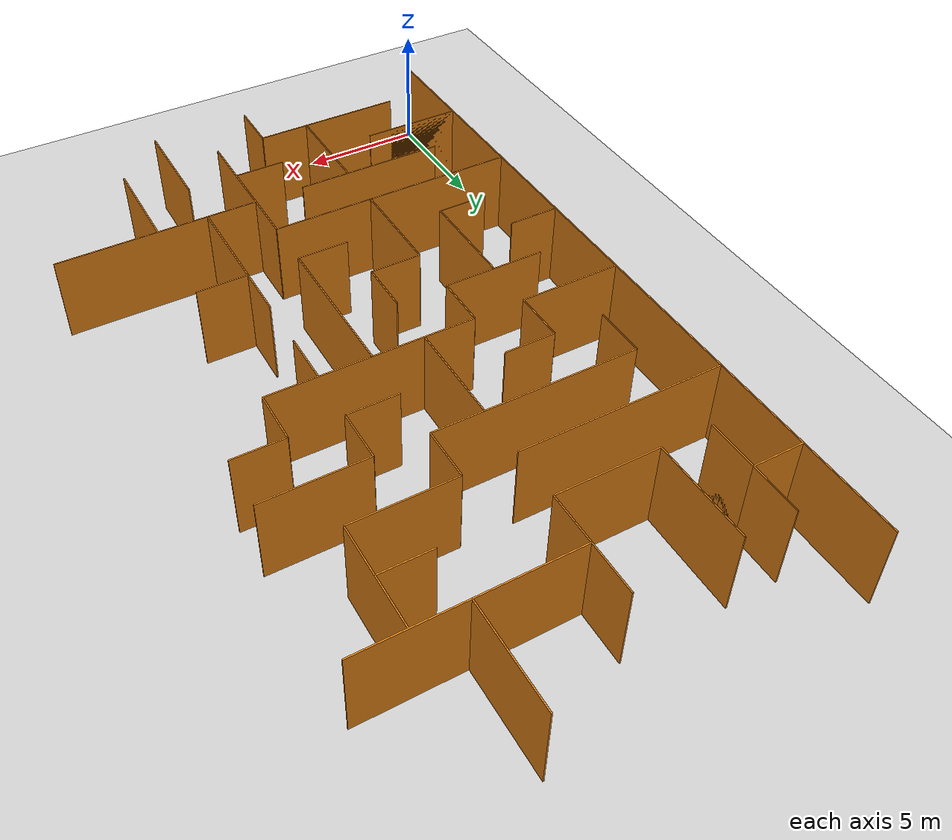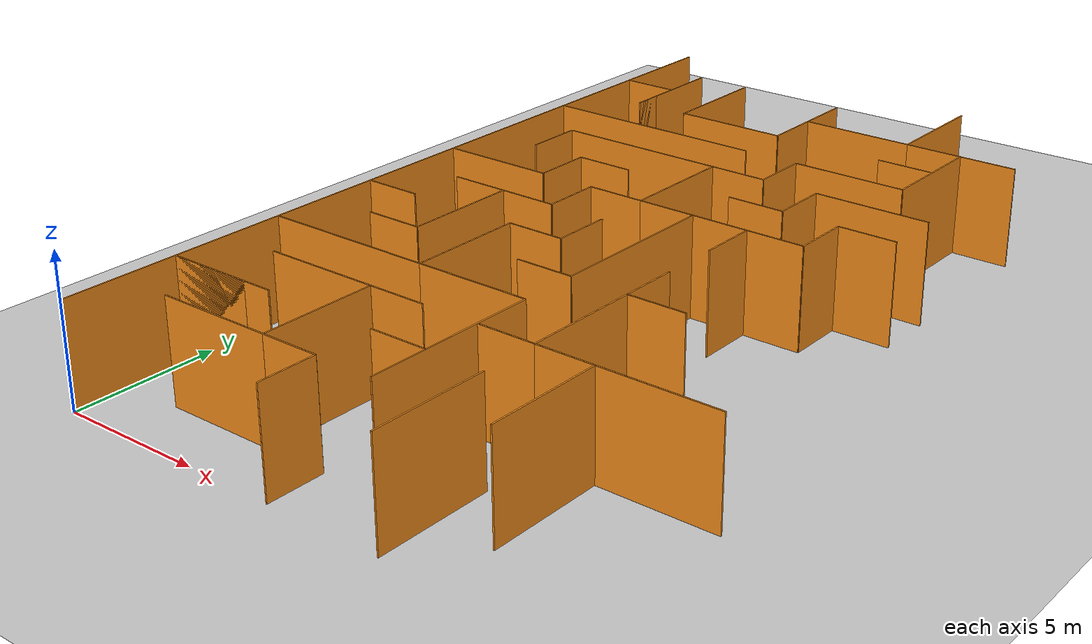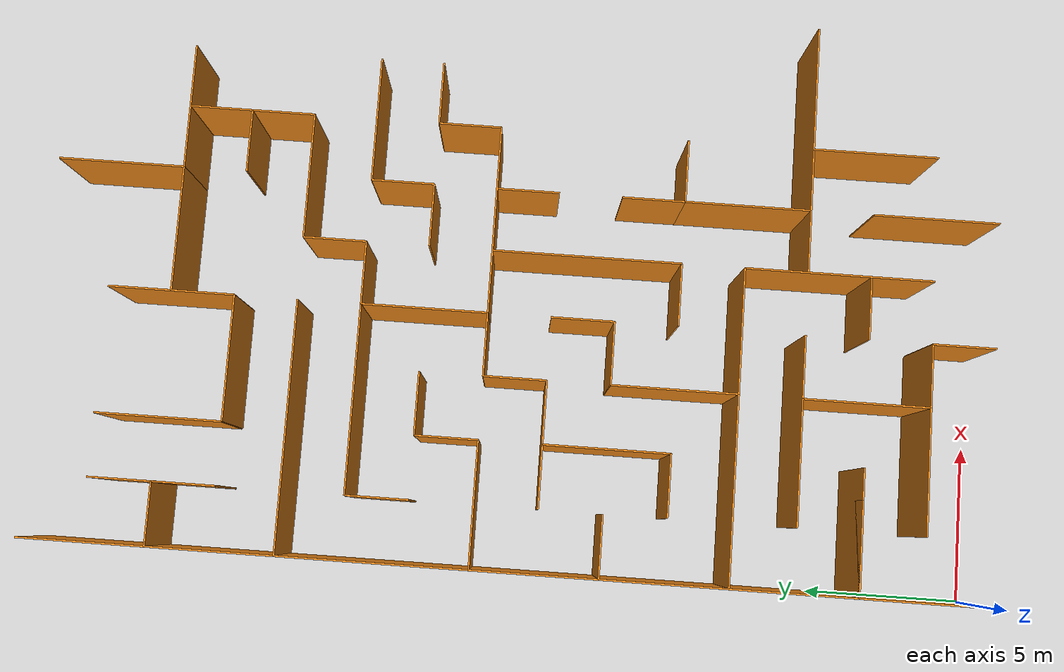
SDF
<sdf version="1.6">
 <world name="default">
  <model name="box_103">
   <pose>12.0 2.0 1.75 0 0 1.5707963267948966</pose>
   <link name="link">
    <inertial>
     <mass>1</mass>
     <inertia><ixx>0</ixx><ixy>0</ixy><ixz>0</ixz><iyy>0</iyy><iyz>0</iyz><izz>0</izz></inertia>
    </inertial>
    <collision name="collision"><geometry><box><size>4.0 0.05 3.5</size></box></geometry></collision>
    <visual name="visual">
     <geometry><box><size>4.0 0.05 3.5</size></box></geometry>
     <material>
      <script><name>Gazebo/Orange</name><uri>file://media/materials/scripts/gazebo.material</uri></script>
     </material>
    </visual>
   </link>
   <static>1</static>
  </model>
  <model name="box_102">
   <pose>2.0 4.0 1.75 0 0 -3.141592653589793</pose>
   <link name="link">
    <inertial>
     <mass>1</mass>
     <inertia><ixx>0</ixx><ixy>0</ixy><ixz>0</ixz><iyy>0</iyy><iyz>0</iyz><izz>0</izz></inertia>
    </inertial>
    <collision name="collision"><geometry><box><size>4.0 0.05 3.5</size></box></geometry></collision>
    <visual name="visual">
     <geometry><box><size>4.0 0.05 3.5</size></box></geometry>
     <material>
      <script><name>Gazebo/Orange</name><uri>file://media/materials/scripts/gazebo.material</uri></script>
     </material>
    </visual>
   </link>
   <static>1</static>
  </model>
  <model name="box_101">
   <pose>1.5 4.0 1.75 0 0 -0.0</pose>
   <link name="link">
    <inertial>
     <mass>1</mass>
     <inertia><ixx>0</ixx><ixy>0</ixy><ixz>0</ixz><iyy>0</iyy><iyz>0</iyz><izz>0</izz></inertia>
    </inertial>
    <collision name="collision"><geometry><box><size>3.0 0.05 3.5</size></box></geometry></collision>
    <visual name="visual">
     <geometry><box><size>3.0 0.05 3.5</size></box></geometry>
     <material>
      <script><name>Gazebo/Orange</name><uri>file://media/materials/scripts/gazebo.material</uri></script>
     </material>
    </visual>
   </link>
   <static>1</static>
  </model>
  <model name="box_100">
   <pose>4.0 2.0 1.75 0 0 -0.0</pose>
   <link name="link">
    <inertial>
     <mass>1</mass>
     <inertia><ixx>0</ixx><ixy>0</ixy><ixz>0</ixz><iyy>0</iyy><iyz>0</iyz><izz>0</izz></inertia>
    </inertial>
    <collision name="collision"><geometry><box><size>4.0 0.05 3.5</size></box></geometry></collision>
    <visual name="visual">
     <geometry><box><size>4.0 0.05 3.5</size></box></geometry>
     <material>
      <script><name>Gazebo/Orange</name><uri>file://media/materials/scripts/gazebo.material</uri></script>
     </material>
    </visual>
   </link>
   <static>1</static>
  </model>
  <model name="box_99">
   <pose>8.0 1.0 1.75 0 0 1.5707963267948966</pose>
   <link name="link">
    <inertial>
     <mass>1</mass>
     <inertia><ixx>0</ixx><ixy>0</ixy><ixz>0</ixz><iyy>0</iyy><iyz>0</iyz><izz>0</izz></inertia>
    </inertial>
    <collision name="collision"><geometry><box><size>2.0 0.05 3.5</size></box></geometry></collision>
    <visual name="visual">
     <geometry><box><size>2.0 0.05 3.5</size></box></geometry>
     <material>
      <script><name>Gazebo/Orange</name><uri>file://media/materials/scripts/gazebo.material</uri></script>
     </material>
    </visual>
   </link>
   <static>1</static>
  </model>
  <model name="box_98">
   <pose>7.0 2.0 1.75 0 0 -3.141592653589793</pose>
   <link name="link">
    <inertial>
     <mass>1</mass>
     <inertia><ixx>0</ixx><ixy>0</ixy><ixz>0</ixz><iyy>0</iyy><iyz>0</iyz><izz>0</izz></inertia>
    </inertial>
    <collision name="collision"><geometry><box><size>2.0 0.05 3.5</size></box></geometry></collision>
    <visual name="visual">
     <geometry><box><size>2.0 0.05 3.5</size></box></geometry>
     <material>
      <script><name>Gazebo/Orange</name><uri>file://media/materials/scripts/gazebo.material</uri></script>
     </material>
    </visual>
   </link>
   <static>1</static>
  </model>
  <model name="box_97">
   <pose>6.0 4.0 1.75 0 0 1.5707963267948966</pose>
   <link name="link">
    <inertial>
     <mass>1</mass>
     <inertia><ixx>0</ixx><ixy>0</ixy><ixz>0</ixz><iyy>0</iyy><iyz>0</iyz><izz>0</izz></inertia>
    </inertial>
    <collision name="collision"><geometry><box><size>4.0 0.05 3.5</size></box></geometry></collision>
    <visual name="visual">
     <geometry><box><size>4.0 0.05 3.5</size></box></geometry>
     <material>
      <script><name>Gazebo/Orange</name><uri>file://media/materials/scripts/gazebo.material</uri></script>
     </material>
    </visual>
   </link>
   <static>1</static>
  </model>
  <model name="box_96">
   <pose>5.0 6.0 1.75 0 0 -0.0</pose>
   <link name="link">
    <inertial>
     <mass>1</mass>
     <inertia><ixx>0</ixx><ixy>0</ixy><ixz>0</ixz><iyy>0</iyy><iyz>0</iyz><izz>0</izz></inertia>
    </inertial>
    <collision name="collision"><geometry><box><size>6.0 0.05 3.5</size></box></geometry></collision>
    <visual name="visual">
     <geometry><box><size>6.0 0.05 3.5</size></box></geometry>
     <material>
      <script><name>Gazebo/Orange</name><uri>file://media/materials/scripts/gazebo.material</uri></script>
     </material>
    </visual>
   </link>
   <static>1</static>
  </model>
  <model name="box_95">
   <pose>3.0 8.0 1.75 0 0 -0.0</pose>
   <link name="link">
    <inertial>
     <mass>1</mass>
     <inertia><ixx>0</ixx><ixy>0</ixy><ixz>0</ixz><iyy>0</iyy><iyz>0</iyz><izz>0</izz></inertia>
    </inertial>
    <collision name="collision"><geometry><box><size>6.0 0.05 3.5</size></box></geometry></collision>
    <visual name="visual">
     <geometry><box><size>6.0 0.05 3.5</size></box></geometry>
     <material>
      <script><name>Gazebo/Orange</name><uri>file://media/materials/scripts/gazebo.material</uri></script>
     </material>
    </visual>
   </link>
   <static>1</static>
  </model>
  <model name="box_93">
   <pose>11.0 6.0 1.75 0 0 -0.0</pose>
   <link name="link">
    <inertial>
     <mass>1</mass>
     <inertia><ixx>0</ixx><ixy>0</ixy><ixz>0</ixz><iyy>0</iyy><iyz>0</iyz><izz>0</izz></inertia>
    </inertial>
    <collision name="collision"><geometry><box><size>2.0 0.05 3.5</size></box></geometry></collision>
    <visual name="visual">
     <geometry><box><size>2.0 0.05 3.5</size></box></geometry>
     <material>
      <script><name>Gazebo/Orange</name><uri>file://media/materials/scripts/gazebo.material</uri></script>
     </material>
    </visual>
   </link>
   <static>1</static>
  </model>
  <model name="box_92">
   <pose>9.0 4.0 1.75 0 0 -0.0</pose>
   <link name="link">
    <inertial>
     <mass>1</mass>
     <inertia><ixx>0</ixx><ixy>0</ixy><ixz>0</ixz><iyy>0</iyy><iyz>0</iyz><izz>0</izz></inertia>
    </inertial>
    <collision name="collision"><geometry><box><size>2.0 0.05 3.5</size></box></geometry></collision>
    <visual name="visual">
     <geometry><box><size>2.0 0.05 3.5</size></box></geometry>
     <material>
      <script><name>Gazebo/Orange</name><uri>file://media/materials/scripts/gazebo.material</uri></script>
     </material>
    </visual>
   </link>
   <static>1</static>
  </model>
  <model name="box_91">
   <pose>10.0 5.0 1.75 0 0 1.5707963267948966</pose>
   <link name="link">
    <inertial>
     <mass>1</mass>
     <inertia><ixx>0</ixx><ixy>0</ixy><ixz>0</ixz><iyy>0</iyy><iyz>0</iyz><izz>0</izz></inertia>
    </inertial>
    <collision name="collision"><geometry><box><size>6.0 0.05 3.5</size></box></geometry></collision>
    <visual name="visual">
     <geometry><box><size>6.0 0.05 3.5</size></box></geometry>
     <material>
      <script><name>Gazebo/Orange</name><uri>file://media/materials/scripts/gazebo.material</uri></script>
     </material>
    </visual>
   </link>
   <static>1</static>
  </model>
  <model name="box_90">
   <pose>8.0 8.0 1.75 0 0 -3.141592653589793</pose>
   <link name="link">
    <inertial>
     <mass>1</mass>
     <inertia><ixx>0</ixx><ixy>0</ixy><ixz>0</ixz><iyy>0</iyy><iyz>0</iyz><izz>0</izz></inertia>
    </inertial>
    <collision name="collision"><geometry><box><size>4.0 0.05 3.5</size></box></geometry></collision>
    <visual name="visual">
     <geometry><box><size>4.0 0.05 3.5</size></box></geometry>
     <material>
      <script><name>Gazebo/Orange</name><uri>file://media/materials/scripts/gazebo.material</uri></script>
     </material>
    </visual>
   </link>
   <static>1</static>
  </model>
  <model name="box_89">
   <pose>6.0 10.0 1.75 0 0 1.5707963267948966</pose>
   <link name="link">
    <inertial>
     <mass>1</mass>
     <inertia><ixx>0</ixx><ixy>0</ixy><ixz>0</ixz><iyy>0</iyy><iyz>0</iyz><izz>0</izz></inertia>
    </inertial>
    <collision name="collision"><geometry><box><size>4.0 0.05 3.5</size></box></geometry></collision>
    <visual name="visual">
     <geometry><box><size>4.0 0.05 3.5</size></box></geometry>
     <material>
      <script><name>Gazebo/Orange</name><uri>file://media/materials/scripts/gazebo.material</uri></script>
     </material>
    </visual>
   </link>
   <static>1</static>
  </model>
  <model name="box_88">
   <pose>7.0 12.0 1.75 0 0 -0.0</pose>
   <link name="link">
    <inertial>
     <mass>1</mass>
     <inertia><ixx>0</ixx><ixy>0</ixy><ixz>0</ixz><iyy>0</iyy><iyz>0</iyz><izz>0</izz></inertia>
    </inertial>
    <collision name="collision"><geometry><box><size>2.0 0.05 3.5</size></box></geometry></collision>
    <visual name="visual">
     <geometry><box><size>2.0 0.05 3.5</size></box></geometry>
     <material>
      <script><name>Gazebo/Orange</name><uri>file://media/materials/scripts/gazebo.material</uri></script>
     </material>
    </visual>
   </link>
   <static>1</static>
  </model>
  <model name="box_87">
   <pose>8.0 13.0 1.75 0 0 1.5707963267948966</pose>
   <link name="link">
    <inertial>
     <mass>1</mass>
     <inertia><ixx>0</ixx><ixy>0</ixy><ixz>0</ixz><iyy>0</iyy><iyz>0</iyz><izz>0</izz></inertia>
    </inertial>
    <collision name="collision"><geometry><box><size>2.0 0.05 3.5</size></box></geometry></collision>
    <visual name="visual">
     <geometry><box><size>2.0 0.05 3.5</size></box></geometry>
     <material>
      <script><name>Gazebo/Orange</name><uri>file://media/materials/scripts/gazebo.material</uri></script>
     </material>
    </visual>
   </link>
   <static>1</static>
  </model>
  <model name="box_86">
   <pose>9.0 10.0 1.75 0 0 -0.0</pose>
   <link name="link">
    <inertial>
     <mass>1</mass>
     <inertia><ixx>0</ixx><ixy>0</ixy><ixz>0</ixz><iyy>0</iyy><iyz>0</iyz><izz>0</izz></inertia>
    </inertial>
    <collision name="collision"><geometry><box><size>2.0 0.05 3.5</size></box></geometry></collision>
    <visual name="visual">
     <geometry><box><size>2.0 0.05 3.5</size></box></geometry>
     <material>
      <script><name>Gazebo/Orange</name><uri>file://media/materials/scripts/gazebo.material</uri></script>
     </material>
    </visual>
   </link>
   <static>1</static>
  </model>
  <model name="box_85">
   <pose>10.0 13.0 1.75 0 0 1.5707963267948966</pose>
   <link name="link">
    <inertial>
     <mass>1</mass>
     <inertia><ixx>0</ixx><ixy>0</ixy><ixz>0</ixz><iyy>0</iyy><iyz>0</iyz><izz>0</izz></inertia>
    </inertial>
    <collision name="collision"><geometry><box><size>6.0 0.05 3.5</size></box></geometry></collision>
    <visual name="visual">
     <geometry><box><size>6.0 0.05 3.5</size></box></geometry>
     <material>
      <script><name>Gazebo/Orange</name><uri>file://media/materials/scripts/gazebo.material</uri></script>
     </material>
    </visual>
   </link>
   <static>1</static>
  </model>
  <model name="box_84">
   <pose>12.0 15.0 1.75 0 0 1.5707963267948966</pose>
   <link name="link">
    <inertial>
     <mass>1</mass>
     <inertia><ixx>0</ixx><ixy>0</ixy><ixz>0</ixz><iyy>0</iyy><iyz>0</iyz><izz>0</izz></inertia>
    </inertial>
    <collision name="collision"><geometry><box><size>2.0 0.05 3.5</size></box></geometry></collision>
    <visual name="visual">
     <geometry><box><size>2.0 0.05 3.5</size></box></geometry>
     <material>
      <script><name>Gazebo/Orange</name><uri>file://media/materials/scripts/gazebo.material</uri></script>
     </material>
    </visual>
   </link>
   <static>1</static>
  </model>
  <model name="box_83">
   <pose>11.0 16.0 1.75 0 0 -0.0</pose>
   <link name="link">
    <inertial>
     <mass>1</mass>
     <inertia><ixx>0</ixx><ixy>0</ixy><ixz>0</ixz><iyy>0</iyy><iyz>0</iyz><izz>0</izz></inertia>
    </inertial>
    <collision name="collision"><geometry><box><size>6.0 0.05 3.5</size></box></geometry></collision>
    <visual name="visual">
     <geometry><box><size>6.0 0.05 3.5</size></box></geometry>
     <material>
      <script><name>Gazebo/Orange</name><uri>file://media/materials/scripts/gazebo.material</uri></script>
     </material>
    </visual>
   </link>
   <static>1</static>
  </model>
  <model name="box_82">
   <pose>14.0 17.0 1.75 0 0 1.5707963267948966</pose>
   <link name="link">
    <inertial>
     <mass>1</mass>
     <inertia><ixx>0</ixx><ixy>0</ixy><ixz>0</ixz><iyy>0</iyy><iyz>0</iyz><izz>0</izz></inertia>
    </inertial>
    <collision name="collision"><geometry><box><size>2.0 0.05 3.5</size></box></geometry></collision>
    <visual name="visual">
     <geometry><box><size>2.0 0.05 3.5</size></box></geometry>
     <material>
      <script><name>Gazebo/Orange</name><uri>file://media/materials/scripts/gazebo.material</uri></script>
     </material>
    </visual>
   </link>
   <static>1</static>
  </model>
  <model name="box_81">
   <pose>15.0 18.0 1.75 0 0 -0.0</pose>
   <link name="link">
    <inertial>
     <mass>1</mass>
     <inertia><ixx>0</ixx><ixy>0</ixy><ixz>0</ixz><iyy>0</iyy><iyz>0</iyz><izz>0</izz></inertia>
    </inertial>
    <collision name="collision"><geometry><box><size>2.0 0.05 3.5</size></box></geometry></collision>
    <visual name="visual">
     <geometry><box><size>2.0 0.05 3.5</size></box></geometry>
     <material>
      <script><name>Gazebo/Orange</name><uri>file://media/materials/scripts/gazebo.material</uri></script>
     </material>
    </visual>
   </link>
   <static>1</static>
  </model>
  <model name="box_80">
   <pose>14.0 4.0 1.75 0 0 1.5707963267948966</pose>
   <link name="link">
    <inertial>
     <mass>1</mass>
     <inertia><ixx>0</ixx><ixy>0</ixy><ixz>0</ixz><iyy>0</iyy><iyz>0</iyz><izz>0</izz></inertia>
    </inertial>
    <collision name="collision"><geometry><box><size>4.0 0.05 3.5</size></box></geometry></collision>
    <visual name="visual">
     <geometry><box><size>4.0 0.05 3.5</size></box></geometry>
     <material>
      <script><name>Gazebo/Orange</name><uri>file://media/materials/scripts/gazebo.material</uri></script>
     </material>
    </visual>
   </link>
   <static>1</static>
  </model>
  <model name="box_78">
   <pose>15.0 6.0 1.75 0 0 -3.141592653589793</pose>
   <link name="link">
    <inertial>
     <mass>1</mass>
     <inertia><ixx>0</ixx><ixy>0</ixy><ixz>0</ixz><iyy>0</iyy><iyz>0</iyz><izz>0</izz></inertia>
    </inertial>
    <collision name="collision"><geometry><box><size>6.0 0.05 3.5</size></box></geometry></collision>
    <visual name="visual">
     <geometry><box><size>6.0 0.05 3.5</size></box></geometry>
     <material>
      <script><name>Gazebo/Orange</name><uri>file://media/materials/scripts/gazebo.material</uri></script>
     </material>
    </visual>
   </link>
   <static>1</static>
  </model>
  <model name="box_77">
   <pose>12.0 8.0 1.75 0 0 1.5707963267948966</pose>
   <link name="link">
    <inertial>
     <mass>1</mass>
     <inertia><ixx>0</ixx><ixy>0</ixy><ixz>0</ixz><iyy>0</iyy><iyz>0</iyz><izz>0</izz></inertia>
    </inertial>
    <collision name="collision"><geometry><box><size>4.0 0.05 3.5</size></box></geometry></collision>
    <visual name="visual">
     <geometry><box><size>4.0 0.05 3.5</size></box></geometry>
     <material>
      <script><name>Gazebo/Orange</name><uri>file://media/materials/scripts/gazebo.material</uri></script>
     </material>
    </visual>
   </link>
   <static>1</static>
  </model>
  <model name="box_76">
   <pose>12.0 11.0 1.75 0 0 -1.5707963267948966</pose>
   <link name="link">
    <inertial>
     <mass>1</mass>
     <inertia><ixx>0</ixx><ixy>0</ixy><ixz>0</ixz><iyy>0</iyy><iyz>0</iyz><izz>0</izz></inertia>
    </inertial>
    <collision name="collision"><geometry><box><size>2.0 0.05 3.5</size></box></geometry></collision>
    <visual name="visual">
     <geometry><box><size>2.0 0.05 3.5</size></box></geometry>
     <material>
      <script><name>Gazebo/Orange</name><uri>file://media/materials/scripts/gazebo.material</uri></script>
     </material>
    </visual>
   </link>
   <static>1</static>
  </model>
  <model name="box_75">
   <pose>13.0 10.0 1.75 0 0 -0.0</pose>
   <link name="link">
    <inertial>
     <mass>1</mass>
     <inertia><ixx>0</ixx><ixy>0</ixy><ixz>0</ixz><iyy>0</iyy><iyz>0</iyz><izz>0</izz></inertia>
    </inertial>
    <collision name="collision"><geometry><box><size>2.0 0.05 3.5</size></box></geometry></collision>
    <visual name="visual">
     <geometry><box><size>2.0 0.05 3.5</size></box></geometry>
     <material>
      <script><name>Gazebo/Orange</name><uri>file://media/materials/scripts/gazebo.material</uri></script>
     </material>
    </visual>
   </link>
   <static>1</static>
  </model>
  <model name="box_38">
   <pose>5.0 18.0 1.75 0 0 -3.141592653589793</pose>
   <link name="link">
    <inertial>
     <mass>1</mass>
     <inertia><ixx>0</ixx><ixy>0</ixy><ixz>0</ixz><iyy>0</iyy><iyz>0</iyz><izz>0</izz></inertia>
    </inertial>
    <collision name="collision"><geometry><box><size>2.0 0.05 3.5</size></box></geometry></collision>
    <visual name="visual">
     <geometry><box><size>2.0 0.05 3.5</size></box></geometry>
     <material>
      <script><name>Gazebo/Orange</name><uri>file://media/materials/scripts/gazebo.material</uri></script>
     </material>
    </visual>
   </link>
   <static>1</static>
  </model>
  <model name="box_37">
   <pose>4.0 17.0 1.75 0 0 -1.5707963267948966</pose>
   <link name="link">
    <inertial>
     <mass>1</mass>
     <inertia><ixx>0</ixx><ixy>0</ixy><ixz>0</ixz><iyy>0</iyy><iyz>0</iyz><izz>0</izz></inertia>
    </inertial>
    <collision name="collision"><geometry><box><size>2.0 0.05 3.5</size></box></geometry></collision>
    <visual name="visual">
     <geometry><box><size>2.0 0.05 3.5</size></box></geometry>
     <material>
      <script><name>Gazebo/Orange</name><uri>file://media/materials/scripts/gazebo.material</uri></script>
     </material>
    </visual>
   </link>
   <static>1</static>
  </model>
  <model name="box_36">
   <pose>2.0 16.0 1.75 0 0 -3.141592653589793</pose>
   <link name="link">
    <inertial>
     <mass>1</mass>
     <inertia><ixx>0</ixx><ixy>0</ixy><ixz>0</ixz><iyy>0</iyy><iyz>0</iyz><izz>0</izz></inertia>
    </inertial>
    <collision name="collision"><geometry><box><size>4.0 0.05 3.5</size></box></geometry></collision>
    <visual name="visual">
     <geometry><box><size>4.0 0.05 3.5</size></box></geometry>
     <material>
      <script><name>Gazebo/Orange</name><uri>file://media/materials/scripts/gazebo.material</uri></script>
     </material>
    </visual>
   </link>
   <static>1</static>
  </model>
  <model name="box_35">
   <pose>1.0 12.0 1.75 0 0 -3.141592653589793</pose>
   <link name="link">
    <inertial>
     <mass>1</mass>
     <inertia><ixx>0</ixx><ixy>0</ixy><ixz>0</ixz><iyy>0</iyy><iyz>0</iyz><izz>0</izz></inertia>
    </inertial>
    <collision name="collision"><geometry><box><size>2.0 0.05 3.5</size></box></geometry></collision>
    <visual name="visual">
     <geometry><box><size>2.0 0.05 3.5</size></box></geometry>
     <material>
      <script><name>Gazebo/Orange</name><uri>file://media/materials/scripts/gazebo.material</uri></script>
     </material>
    </visual>
   </link>
   <static>1</static>
  </model>
  <model name="box_34">
   <pose>3.0 10.0 1.75 0 0 -0.0</pose>
   <link name="link">
    <inertial>
     <mass>1</mass>
     <inertia><ixx>0</ixx><ixy>0</ixy><ixz>0</ixz><iyy>0</iyy><iyz>0</iyz><izz>0</izz></inertia>
    </inertial>
    <collision name="collision"><geometry><box><size>2.0 0.05 3.5</size></box></geometry></collision>
    <visual name="visual">
     <geometry><box><size>2.0 0.05 3.5</size></box></geometry>
     <material>
      <script><name>Gazebo/Orange</name><uri>file://media/materials/scripts/gazebo.material</uri></script>
     </material>
    </visual>
   </link>
   <static>1</static>
  </model>
  <model name="box_33">
   <pose>4.0 12.0 1.75 0 0 1.5707963267948966</pose>
   <link name="link">
    <inertial>
     <mass>1</mass>
     <inertia><ixx>0</ixx><ixy>0</ixy><ixz>0</ixz><iyy>0</iyy><iyz>0</iyz><izz>0</izz></inertia>
    </inertial>
    <collision name="collision"><geometry><box><size>4.0 0.05 3.5</size></box></geometry></collision>
    <visual name="visual">
     <geometry><box><size>4.0 0.05 3.5</size></box></geometry>
     <material>
      <script><name>Gazebo/Orange</name><uri>file://media/materials/scripts/gazebo.material</uri></script>
     </material>
    </visual>
   </link>
   <static>1</static>
  </model>
  <model name="box_32">
   <pose>4.0 14.0 1.75 0 0 -0.0</pose>
   <link name="link">
    <inertial>
     <mass>1</mass>
     <inertia><ixx>0</ixx><ixy>0</ixy><ixz>0</ixz><iyy>0</iyy><iyz>0</iyz><izz>0</izz></inertia>
    </inertial>
    <collision name="collision"><geometry><box><size>4.0 0.05 3.5</size></box></geometry></collision>
    <visual name="visual">
     <geometry><box><size>4.0 0.05 3.5</size></box></geometry>
     <material>
      <script><name>Gazebo/Orange</name><uri>file://media/materials/scripts/gazebo.material</uri></script>
     </material>
    </visual>
   </link>
   <static>1</static>
  </model>
  <model name="box_31">
   <pose>6.0 15.0 1.75 0 0 1.5707963267948966</pose>
   <link name="link">
    <inertial>
     <mass>1</mass>
     <inertia><ixx>0</ixx><ixy>0</ixy><ixz>0</ixz><iyy>0</iyy><iyz>0</iyz><izz>0</izz></inertia>
    </inertial>
    <collision name="collision"><geometry><box><size>2.0 0.05 3.5</size></box></geometry></collision>
    <visual name="visual">
     <geometry><box><size>2.0 0.05 3.5</size></box></geometry>
     <material>
      <script><name>Gazebo/Orange</name><uri>file://media/materials/scripts/gazebo.material</uri></script>
     </material>
    </visual>
   </link>
   <static>1</static>
  </model>
  <model name="box_30">
   <pose>7.0 16.0 1.75 0 0 -0.0</pose>
   <link name="link">
    <inertial>
     <mass>1</mass>
     <inertia><ixx>0</ixx><ixy>0</ixy><ixz>0</ixz><iyy>0</iyy><iyz>0</iyz><izz>0</izz></inertia>
    </inertial>
    <collision name="collision"><geometry><box><size>2.0 0.05 3.5</size></box></geometry></collision>
    <visual name="visual">
     <geometry><box><size>2.0 0.05 3.5</size></box></geometry>
     <material>
      <script><name>Gazebo/Orange</name><uri>file://media/materials/scripts/gazebo.material</uri></script>
     </material>
    </visual>
   </link>
   <static>1</static>
  </model>
  <model name="box_29">
   <pose>8.0 18.0 1.75 0 0 1.5707963267948966</pose>
   <link name="link">
    <inertial>
     <mass>1</mass>
     <inertia><ixx>0</ixx><ixy>0</ixy><ixz>0</ixz><iyy>0</iyy><iyz>0</iyz><izz>0</izz></inertia>
    </inertial>
    <collision name="collision"><geometry><box><size>4.0 0.05 3.5</size></box></geometry></collision>
    <visual name="visual">
     <geometry><box><size>4.0 0.05 3.5</size></box></geometry>
     <material>
      <script><name>Gazebo/Orange</name><uri>file://media/materials/scripts/gazebo.material</uri></script>
     </material>
    </visual>
   </link>
   <static>1</static>
  </model>
  <model name="box_28">
   <pose>11.0 18.0 1.75 0 0 -0.0</pose>
   <link name="link">
    <inertial>
     <mass>1</mass>
     <inertia><ixx>0</ixx><ixy>0</ixy><ixz>0</ixz><iyy>0</iyy><iyz>0</iyz><izz>0</izz></inertia>
    </inertial>
    <collision name="collision"><geometry><box><size>2.0 0.05 3.5</size></box></geometry></collision>
    <visual name="visual">
     <geometry><box><size>2.0 0.05 3.5</size></box></geometry>
     <material>
      <script><name>Gazebo/Orange</name><uri>file://media/materials/scripts/gazebo.material</uri></script>
     </material>
    </visual>
   </link>
   <static>1</static>
  </model>
  <model name="box_27">
   <pose>12.0 19.0 1.75 0 0 1.5707963267948966</pose>
   <link name="link">
    <inertial>
     <mass>1</mass>
     <inertia><ixx>0</ixx><ixy>0</ixy><ixz>0</ixz><iyy>0</iyy><iyz>0</iyz><izz>0</izz></inertia>
    </inertial>
    <collision name="collision"><geometry><box><size>2.0 0.05 3.5</size></box></geometry></collision>
    <visual name="visual">
     <geometry><box><size>2.0 0.05 3.5</size></box></geometry>
     <material>
      <script><name>Gazebo/Orange</name><uri>file://media/materials/scripts/gazebo.material</uri></script>
     </material>
    </visual>
   </link>
   <static>1</static>
  </model>
  <model name="box_26">
   <pose>14.0 20.0 1.75 0 0 -0.0</pose>
   <link name="link">
    <inertial>
     <mass>1</mass>
     <inertia><ixx>0</ixx><ixy>0</ixy><ixz>0</ixz><iyy>0</iyy><iyz>0</iyz><izz>0</izz></inertia>
    </inertial>
    <collision name="collision"><geometry><box><size>4.0 0.05 3.5</size></box></geometry></collision>
    <visual name="visual">
     <geometry><box><size>4.0 0.05 3.5</size></box></geometry>
     <material>
      <script><name>Gazebo/Orange</name><uri>file://media/materials/scripts/gazebo.material</uri></script>
     </material>
    </visual>
   </link>
   <static>1</static>
  </model>
  <model name="box_21">
   <pose>2.0 19.0 1.75 0 0 1.5707963267948966</pose>
   <link name="link">
    <inertial>
     <mass>1</mass>
     <inertia><ixx>0</ixx><ixy>0</ixy><ixz>0</ixz><iyy>0</iyy><iyz>0</iyz><izz>0</izz></inertia>
    </inertial>
    <collision name="collision"><geometry><box><size>2.0 0.05 3.5</size></box></geometry></collision>
    <visual name="visual">
     <geometry><box><size>2.0 0.05 3.5</size></box></geometry>
     <material>
      <script><name>Gazebo/Orange</name><uri>file://media/materials/scripts/gazebo.material</uri></script>
     </material>
    </visual>
   </link>
   <static>1</static>
  </model>
  <model name="box_20">
   <pose>6.0 20.0 1.75 0 0 -0.0</pose>
   <link name="link">
    <inertial>
     <mass>1</mass>
     <inertia><ixx>0</ixx><ixy>0</ixy><ixz>0</ixz><iyy>0</iyy><iyz>0</iyz><izz>0</izz></inertia>
    </inertial>
    <collision name="collision"><geometry><box><size>8.0 0.05 3.5</size></box></geometry></collision>
    <visual name="visual">
     <geometry><box><size>8.0 0.05 3.5</size></box></geometry>
     <material>
      <script><name>Gazebo/Orange</name><uri>file://media/materials/scripts/gazebo.material</uri></script>
     </material>
    </visual>
   </link>
   <static>1</static>
  </model>
  <model name="box_19">
   <pose>10.0 21.0 1.75 0 0 1.5707963267948966</pose>
   <link name="link">
    <inertial>
     <mass>1</mass>
     <inertia><ixx>0</ixx><ixy>0</ixy><ixz>0</ixz><iyy>0</iyy><iyz>0</iyz><izz>0</izz></inertia>
    </inertial>
    <collision name="collision"><geometry><box><size>2.0 0.05 3.5</size></box></geometry></collision>
    <visual name="visual">
     <geometry><box><size>2.0 0.05 3.5</size></box></geometry>
     <material>
      <script><name>Gazebo/Orange</name><uri>file://media/materials/scripts/gazebo.material</uri></script>
     </material>
    </visual>
   </link>
   <static>1</static>
  </model>
  <model name="box_18">
   <pose>12.0 22.0 1.75 0 0 -0.0</pose>
   <link name="link">
    <inertial>
     <mass>1</mass>
     <inertia><ixx>0</ixx><ixy>0</ixy><ixz>0</ixz><iyy>0</iyy><iyz>0</iyz><izz>0</izz></inertia>
    </inertial>
    <collision name="collision"><geometry><box><size>4.0 0.05 3.5</size></box></geometry></collision>
    <visual name="visual">
     <geometry><box><size>4.0 0.05 3.5</size></box></geometry>
     <material>
      <script><name>Gazebo/Orange</name><uri>file://media/materials/scripts/gazebo.material</uri></script>
     </material>
    </visual>
   </link>
   <static>1</static>
  </model>
  <model name="box_17">
   <pose>14.0 24.0 1.75 0 0 -1.5707963267948966</pose>
   <link name="link">
    <inertial>
     <mass>1</mass>
     <inertia><ixx>0</ixx><ixy>0</ixy><ixz>0</ixz><iyy>0</iyy><iyz>0</iyz><izz>0</izz></inertia>
    </inertial>
    <collision name="collision"><geometry><box><size>4.0 0.05 3.5</size></box></geometry></collision>
    <visual name="visual">
     <geometry><box><size>4.0 0.05 3.5</size></box></geometry>
     <material>
      <script><name>Gazebo/Orange</name><uri>file://media/materials/scripts/gazebo.material</uri></script>
     </material>
    </visual>
   </link>
   <static>1</static>
  </model>
  <model name="box_16">
   <pose>13.0 24.0 1.75 0 0 -3.141592653589793</pose>
   <link name="link">
    <inertial>
     <mass>1</mass>
     <inertia><ixx>0</ixx><ixy>0</ixy><ixz>0</ixz><iyy>0</iyy><iyz>0</iyz><izz>0</izz></inertia>
    </inertial>
    <collision name="collision"><geometry><box><size>2.0 0.05 3.5</size></box></geometry></collision>
    <visual name="visual">
     <geometry><box><size>2.0 0.05 3.5</size></box></geometry>
     <material>
      <script><name>Gazebo/Orange</name><uri>file://media/materials/scripts/gazebo.material</uri></script>
     </material>
    </visual>
   </link>
   <static>1</static>
  </model>
  <model name="box_15">
   <pose>14.0 26.0 1.75 0 0 -3.141592653589793</pose>
   <link name="link">
    <inertial>
     <mass>1</mass>
     <inertia><ixx>0</ixx><ixy>0</ixy><ixz>0</ixz><iyy>0</iyy><iyz>0</iyz><izz>0</izz></inertia>
    </inertial>
    <collision name="collision"><geometry><box><size>4.0 0.05 3.5</size></box></geometry></collision>
    <visual name="visual">
     <geometry><box><size>4.0 0.05 3.5</size></box></geometry>
     <material>
      <script><name>Gazebo/Orange</name><uri>file://media/materials/scripts/gazebo.material</uri></script>
     </material>
    </visual>
   </link>
   <static>1</static>
  </model>
  <model name="box_14">
   <pose>12.0 28.0 1.75 0 0 1.5707963267948966</pose>
   <link name="link">
    <inertial>
     <mass>1</mass>
     <inertia><ixx>0</ixx><ixy>0</ixy><ixz>0</ixz><iyy>0</iyy><iyz>0</iyz><izz>0</izz></inertia>
    </inertial>
    <collision name="collision"><geometry><box><size>4.0 0.05 3.5</size></box></geometry></collision>
    <visual name="visual">
     <geometry><box><size>4.0 0.05 3.5</size></box></geometry>
     <material>
      <script><name>Gazebo/Orange</name><uri>file://media/materials/scripts/gazebo.material</uri></script>
     </material>
    </visual>
   </link>
   <static>1</static>
  </model>
  <model name="box_13">
   <pose>4.0 22.0 1.75 0 0 -0.0</pose>
   <link name="link">
    <inertial>
     <mass>1</mass>
     <inertia><ixx>0</ixx><ixy>0</ixy><ixz>0</ixz><iyy>0</iyy><iyz>0</iyz><izz>0</izz></inertia>
    </inertial>
    <collision name="collision"><geometry><box><size>8.0 0.05 3.5</size></box></geometry></collision>
    <visual name="visual">
     <geometry><box><size>8.0 0.05 3.5</size></box></geometry>
     <material>
      <script><name>Gazebo/Orange</name><uri>file://media/materials/scripts/gazebo.material</uri></script>
     </material>
    </visual>
   </link>
   <static>1</static>
  </model>
  <model name="box_12">
   <pose>10.0 26.0 1.75 0 0 -3.141592653589793</pose>
   <link name="link">
    <inertial>
     <mass>1</mass>
     <inertia><ixx>0</ixx><ixy>0</ixy><ixz>0</ixz><iyy>0</iyy><iyz>0</iyz><izz>0</izz></inertia>
    </inertial>
    <collision name="collision"><geometry><box><size>4.0 0.05 3.5</size></box></geometry></collision>
    <visual name="visual">
     <geometry><box><size>4.0 0.05 3.5</size></box></geometry>
     <material>
      <script><name>Gazebo/Orange</name><uri>file://media/materials/scripts/gazebo.material</uri></script>
     </material>
    </visual>
   </link>
   <static>1</static>
  </model>
  <model name="box_11">
   <pose>8.0 26.0 1.75 0 0 -1.5707963267948966</pose>
   <link name="link">
    <inertial>
     <mass>1</mass>
     <inertia><ixx>0</ixx><ixy>0</ixy><ixz>0</ixz><iyy>0</iyy><iyz>0</iyz><izz>0</izz></inertia>
    </inertial>
    <collision name="collision"><geometry><box><size>4.0 0.05 3.5</size></box></geometry></collision>
    <visual name="visual">
     <geometry><box><size>4.0 0.05 3.5</size></box></geometry>
     <material>
      <script><name>Gazebo/Orange</name><uri>file://media/materials/scripts/gazebo.material</uri></script>
     </material>
    </visual>
   </link>
   <static>1</static>
  </model>
  <model name="box_10">
   <pose>6.0 24.0 1.75 0 0 -0.0</pose>
   <link name="link">
    <inertial>
     <mass>1</mass>
     <inertia><ixx>0</ixx><ixy>0</ixy><ixz>0</ixz><iyy>0</iyy><iyz>0</iyz><izz>0</izz></inertia>
    </inertial>
    <collision name="collision"><geometry><box><size>4.0 0.05 3.5</size></box></geometry></collision>
    <visual name="visual">
     <geometry><box><size>4.0 0.05 3.5</size></box></geometry>
     <material>
      <script><name>Gazebo/Orange</name><uri>file://media/materials/scripts/gazebo.material</uri></script>
     </material>
    </visual>
   </link>
   <static>1</static>
  </model>
  <model name="box_9">
   <pose>4.0 26.0 1.75 0 0 1.5707963267948966</pose>
   <link name="link">
    <inertial>
     <mass>1</mass>
     <inertia><ixx>0</ixx><ixy>0</ixy><ixz>0</ixz><iyy>0</iyy><iyz>0</iyz><izz>0</izz></inertia>
    </inertial>
    <collision name="collision"><geometry><box><size>4.0 0.05 3.5</size></box></geometry></collision>
    <visual name="visual">
     <geometry><box><size>4.0 0.05 3.5</size></box></geometry>
     <material>
      <script><name>Gazebo/Orange</name><uri>file://media/materials/scripts/gazebo.material</uri></script>
     </material>
    </visual>
   </link>
   <static>1</static>
  </model>
  <model name="box_8">
   <pose>1.0 26.0 1.75 0 0 -0.0</pose>
   <link name="link">
    <inertial>
     <mass>1</mass>
     <inertia><ixx>0</ixx><ixy>0</ixy><ixz>0</ixz><iyy>0</iyy><iyz>0</iyz><izz>0</izz></inertia>
    </inertial>
    <collision name="collision"><geometry><box><size>2.0 0.05 3.5</size></box></geometry></collision>
    <visual name="visual">
     <geometry><box><size>2.0 0.05 3.5</size></box></geometry>
     <material>
      <script><name>Gazebo/Orange</name><uri>file://media/materials/scripts/gazebo.material</uri></script>
     </material>
    </visual>
   </link>
   <static>1</static>
  </model>
  <model name="box_7">
   <pose>2.0 25.0 1.75 0 0 -1.5707963267948966</pose>
   <link name="link">
    <inertial>
     <mass>1</mass>
     <inertia><ixx>0</ixx><ixy>0</ixy><ixz>0</ixz><iyy>0</iyy><iyz>0</iyz><izz>0</izz></inertia>
    </inertial>
    <collision name="collision"><geometry><box><size>2.0 0.05 3.5</size></box></geometry></collision>
    <visual name="visual">
     <geometry><box><size>2.0 0.05 3.5</size></box></geometry>
     <material>
      <script><name>Gazebo/Orange</name><uri>file://media/materials/scripts/gazebo.material</uri></script>
     </material>
    </visual>
   </link>
   <static>1</static>
  </model>
  <model name="box_6">
   <pose>2.0 24.5 1.75 0 0 1.5707963267948966</pose>
   <link name="link">
    <inertial>
     <mass>1</mass>
     <inertia><ixx>0</ixx><ixy>0</ixy><ixz>0</ixz><iyy>0</iyy><iyz>0</iyz><izz>0</izz></inertia>
    </inertial>
    <collision name="collision"><geometry><box><size>1.0 0.05 3.5</size></box></geometry></collision>
    <visual name="visual">
     <geometry><box><size>1.0 0.05 3.5</size></box></geometry>
     <material>
      <script><name>Gazebo/Orange</name><uri>file://media/materials/scripts/gazebo.material</uri></script>
     </material>
    </visual>
   </link>
   <static>1</static>
  </model>
  <model name="box_5">
   <pose>2.0 26.5 1.75 0 0 1.5707963267948966</pose>
   <link name="link">
    <inertial>
     <mass>1</mass>
     <inertia><ixx>0</ixx><ixy>0</ixy><ixz>0</ixz><iyy>0</iyy><iyz>0</iyz><izz>0</izz></inertia>
    </inertial>
    <collision name="collision"><geometry><box><size>3.0 0.05 3.5</size></box></geometry></collision>
    <visual name="visual">
     <geometry><box><size>3.0 0.05 3.5</size></box></geometry>
     <material>
      <script><name>Gazebo/Orange</name><uri>file://media/materials/scripts/gazebo.material</uri></script>
     </material>
    </visual>
   </link>
   <static>1</static>
  </model>
  <model name="box_4">
   <pose>0.0 15.0 1.75 0 0 -1.5707963267948966</pose>
   <link name="link">
    <inertial>
     <mass>1</mass>
     <inertia><ixx>0</ixx><ixy>0</ixy><ixz>0</ixz><iyy>0</iyy><iyz>0</iyz><izz>0</izz></inertia>
    </inertial>
    <collision name="collision"><geometry><box><size>30.0 0.05 3.5</size></box></geometry></collision>
    <visual name="visual">
     <geometry><box><size>30.0 0.05 3.5</size></box></geometry>
     <material>
      <script><name>Gazebo/Orange</name><uri>file://media/materials/scripts/gazebo.material</uri></script>
     </material>
    </visual>
   </link>
   <static>1</static>
  </model>
  <model name="ground_plane">
   <static>1</static>
   <link name="link">
    <collision name="collision">
     <geometry><plane><normal>0 0 1</normal><size>100 100</size></plane></geometry>
     <surface>
      <contact><collide_bitmask>65535</collide_bitmask></contact>
      <friction><ode><mu>100</mu><mu2>50</mu2></ode></friction>
     </surface>
    </collision>
    <visual name="visual">
     <cast_shadows>0</cast_shadows>
     <geometry><plane><normal>0 0 1</normal><size>100 100</size></plane></geometry>
     <material>
      <script><uri>file://media/materials/scripts/gazebo.material</uri><name>Gazebo/Grey</name></script>
     </material>
    </visual>
   </link>
  </model>
 </world>
</sdf>
